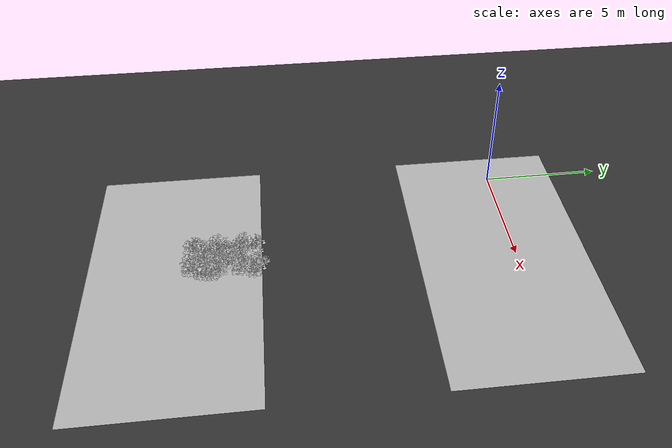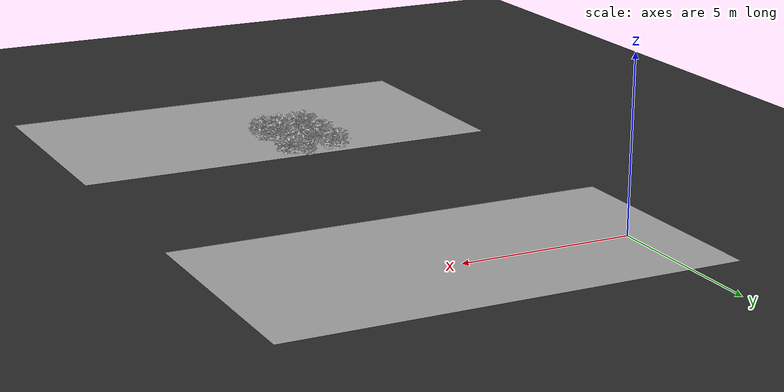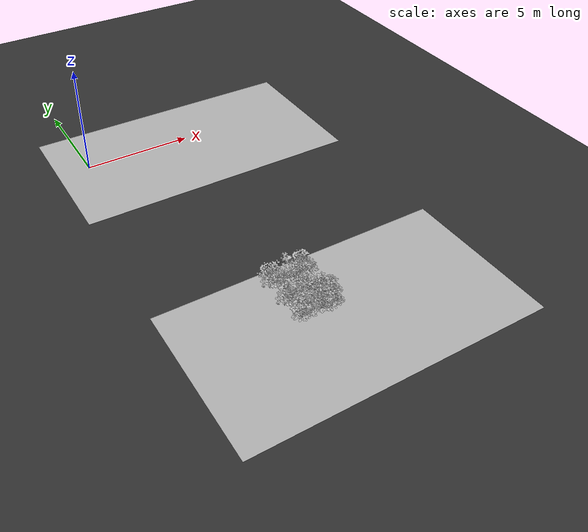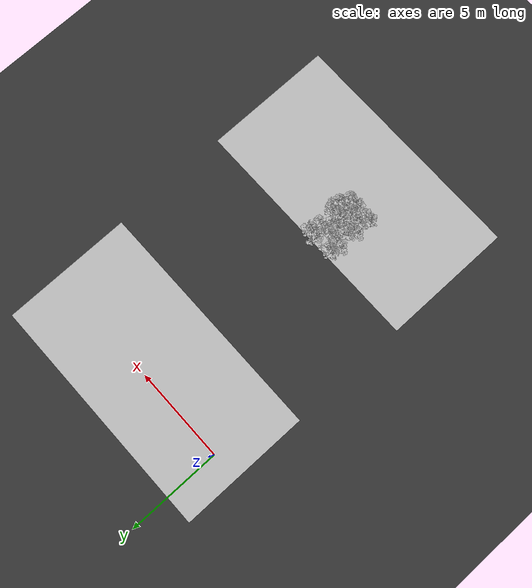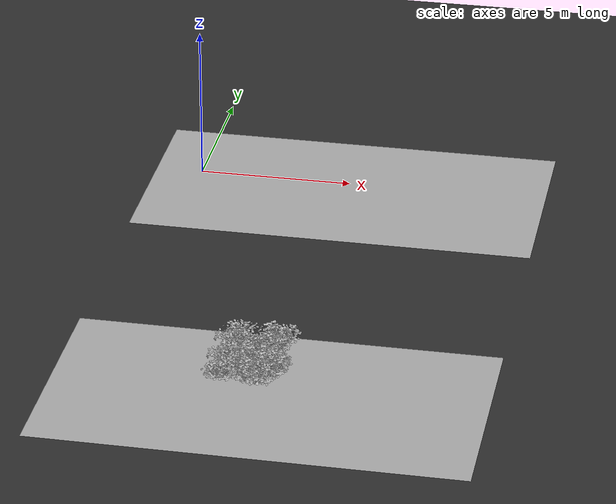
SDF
<sdf version="1.7">
 <world name="default">
  <model name="ground_plane">
   <static>1</static>
   <link name="link">
    <collision name="collision">
     <geometry><plane><normal>0 0 1</normal><size>100 100</size></plane></geometry>
     <surface>
      <contact><collide_bitmask>65535</collide_bitmask></contact>
      <friction><ode><mu>100</mu><mu2>50</mu2></ode></friction>
     </surface>
    </collision>
    <visual name="visual">
     <cast_shadows>0</cast_shadows>
     <geometry><plane><normal>0 0 1</normal><size>100 100</size></plane></geometry>
     <material>
      <ambient>0.2 0.2 0.2 1.0</ambient>
      <diffuse>0.2 0.2 0.2 1.0</diffuse>
      <specular>0.2 0.2 0.2 1.0</specular>
      <emissive>0.2 0.2 0.2 1.0</emissive>
     </material>
    </visual>
   </link>
  </model>
  <model name="ground">
   <pose>5 -0.5 0.01  3.141592654 0 0</pose>
   <static>true</static>
   <link name="body">
    <visual name="visual">
     <cast_shadows>0</cast_shadows>
     <geometry>
      <mesh><uri>file:///home/ifcosta/catkin_ws/src/cnn_line/worlds/models/ground.obj</uri></mesh>
     </geometry>
    </visual>
   </link>
  </model>
  <model name="ground_2">
   <pose>5 -13.8 0.01  3.141592654 0 0</pose>
   <static>true</static>
   <link name="body">
    <visual name="visual">
     <cast_shadows>0</cast_shadows>
     <geometry>
      <mesh><uri>file:///home/ifcosta/catkin_ws/src/cnn_line/worlds/models/ground.obj</uri></mesh>
     </geometry>
    </visual>
   </link>
  </model>
  <model name="plt_40011">
   <pose>3.26 -13.2 0.0165 0.0 0.0 -0.62735</pose>
   <static>true</static>
   <link name="body">
    <visual name="visual">
     <geometry>
      <mesh><uri>file:///home/ifcosta/catkin_ws/src/cnn_line/worlds/models/plant37.obj</uri></mesh>
     </geometry>
    </visual>
   </link>
  </model>
  <model name="plt_40012">
   <pose>3.58 -13.2 0.012 0.0 0.0 -0.29448</pose>
   <static>true</static>
   <link name="body">
    <visual name="visual">
     <geometry>
      <mesh><uri>file:///home/ifcosta/catkin_ws/src/cnn_line/worlds/models/plant37.obj</uri></mesh>
     </geometry>
    </visual>
   </link>
  </model>
  <model name="plt_40014">
   <pose>4.19 -13.2 0.0128 0.0 0.0 -1.1602</pose>
   <static>true</static>
   <link name="body">
    <visual name="visual">
     <geometry>
      <mesh><uri>file:///home/ifcosta/catkin_ws/src/cnn_line/worlds/models/plant37.obj</uri></mesh>
     </geometry>
    </visual>
   </link>
  </model>
  <model name="plt_30015">
   <pose>4.51 -10.3 0.0145 0.0 0.0 0.97449</pose>
   <static>true</static>
   <link name="body">
    <visual name="visual">
     <geometry>
      <mesh><uri>file:///home/ifcosta/catkin_ws/src/cnn_line/worlds/models/plant31.obj</uri></mesh>
     </geometry>
    </visual>
   </link>
  </model>
  <model name="plt_40015">
   <pose>4.51 -13.3 0.0145 0.0 0.0 0.50565</pose>
   <static>true</static>
   <link name="body">
    <visual name="visual">
     <geometry>
      <mesh><uri>file:///home/ifcosta/catkin_ws/src/cnn_line/worlds/models/plant37.obj</uri></mesh>
     </geometry>
    </visual>
   </link>
  </model>
  <model name="plt_40016">
   <pose>4.81 -13.2 0.0153 0.0 0.0 -1.4041</pose>
   <static>true</static>
   <link name="body">
    <visual name="visual">
     <geometry>
      <mesh><uri>file:///home/ifcosta/catkin_ws/src/cnn_line/worlds/models/plant37.obj</uri></mesh>
     </geometry>
    </visual>
   </link>
  </model>
  <model name="plt_40046">
   <pose>3.63 -12.7 0.0131 0.0 0.0 1.1864</pose>
   <static>true</static>
   <link name="body">
    <visual name="visual">
     <geometry>
      <mesh><uri>file:///home/ifcosta/catkin_ws/src/cnn_line/worlds/models/plant37.obj</uri></mesh>
     </geometry>
    </visual>
   </link>
  </model>
  <model name="plt_40047">
   <pose>3.85 -12.8 0.0146 0.0 0.0 -0.0034752</pose>
   <static>true</static>
   <link name="body">
    <visual name="visual">
     <geometry>
      <mesh><uri>file:///home/ifcosta/catkin_ws/src/cnn_line/worlds/models/plant37.obj</uri></mesh>
     </geometry>
    </visual>
   </link>
  </model>
  <model name="plt_40048">
   <pose>4.19 -12.8 0.014 0.0 0.0 -0.86264</pose>
   <static>true</static>
   <link name="body">
    <visual name="visual">
     <geometry>
      <mesh><uri>file:///home/ifcosta/catkin_ws/src/cnn_line/worlds/models/plant37.obj</uri></mesh>
     </geometry>
    </visual>
   </link>
  </model>
  <model name="plt_40049">
   <pose>4.54 -12.7 0.0166 0.0 0.0 1.8852</pose>
   <static>true</static>
   <link name="body">
    <visual name="visual">
     <geometry>
      <mesh><uri>file:///home/ifcosta/catkin_ws/src/cnn_line/worlds/models/plant37.obj</uri></mesh>
     </geometry>
    </visual>
   </link>
  </model>
  <model name="plt_40050">
   <pose>4.78 -12.8 0.0175 0.0 0.0 0.13371</pose>
   <static>true</static>
   <link name="body">
    <visual name="visual">
     <geometry>
      <mesh><uri>file:///home/ifcosta/catkin_ws/src/cnn_line/worlds/models/plant37.obj</uri></mesh>
     </geometry>
    </visual>
   </link>
  </model>
  <model name="plt_40051">
   <pose>5.07 -12.7 0.0158 0.0 0.0 -1.4834</pose>
   <static>true</static>
   <link name="body">
    <visual name="visual">
     <geometry>
      <mesh><uri>file:///home/ifcosta/catkin_ws/src/cnn_line/worlds/models/plant37.obj</uri></mesh>
     </geometry>
    </visual>
   </link>
  </model>
  <model name="plt_40079">
   <pose>3.32 -12.3 0.0155 0.0 0.0 0.55121</pose>
   <static>true</static>
   <link name="body">
    <visual name="visual">
     <geometry>
      <mesh><uri>file:///home/ifcosta/catkin_ws/src/cnn_line/worlds/models/plant37.obj</uri></mesh>
     </geometry>
    </visual>
   </link>
  </model>
  <model name="plt_40080">
   <pose>3.59 -12.2 0.0162 0.0 0.0 1.1995</pose>
   <static>true</static>
   <link name="body">
    <visual name="visual">
     <geometry>
      <mesh><uri>file:///home/ifcosta/catkin_ws/src/cnn_line/worlds/models/plant37.obj</uri></mesh>
     </geometry>
    </visual>
   </link>
  </model>
  <model name="plt_40081">
   <pose>3.9 -12.2 0.0142 0.0 0.0 0.73551</pose>
   <static>true</static>
   <link name="body">
    <visual name="visual">
     <geometry>
      <mesh><uri>file:///home/ifcosta/catkin_ws/src/cnn_line/worlds/models/plant37.obj</uri></mesh>
     </geometry>
    </visual>
   </link>
  </model>
  <model name="plt_40082">
   <pose>4.21 -12.2 0.0144 0.0 0.0 2.1574</pose>
   <static>true</static>
   <link name="body">
    <visual name="visual">
     <geometry>
      <mesh><uri>file:///home/ifcosta/catkin_ws/src/cnn_line/worlds/models/plant37.obj</uri></mesh>
     </geometry>
    </visual>
   </link>
  </model>
  <model name="plt_40083">
   <pose>4.52 -12.3 0.0153 0.0 0.0 -0.96212</pose>
   <static>true</static>
   <link name="body">
    <visual name="visual">
     <geometry>
      <mesh><uri>file:///home/ifcosta/catkin_ws/src/cnn_line/worlds/models/plant37.obj</uri></mesh>
     </geometry>
    </visual>
   </link>
  </model>
  <model name="plt_40084">
   <pose>4.83 -12.2 0.0156 0.0 0.0 -1.383</pose>
   <static>true</static>
   <link name="body">
    <visual name="visual">
     <geometry>
      <mesh><uri>file:///home/ifcosta/catkin_ws/src/cnn_line/worlds/models/plant37.obj</uri></mesh>
     </geometry>
    </visual>
   </link>
  </model>
  <model name="plt_40085">
   <pose>5.04 -12.3 0.013 0.0 0.0 0.22626</pose>
   <static>true</static>
   <link name="body">
    <visual name="visual">
     <geometry>
      <mesh><uri>file:///home/ifcosta/catkin_ws/src/cnn_line/worlds/models/plant37.obj</uri></mesh>
     </geometry>
    </visual>
   </link>
  </model>
  <model name="plt_40114">
   <pose>3.57 -11.8 0.0151 0.0 0.0 1.1737</pose>
   <static>true</static>
   <link name="body">
    <visual name="visual">
     <geometry>
      <mesh><uri>file:///home/ifcosta/catkin_ws/src/cnn_line/worlds/models/plant37.obj</uri></mesh>
     </geometry>
    </visual>
   </link>
  </model>
  <model name="plt_40116">
   <pose>4.14 -11.8 0.0131 0.0 0.0 -0.16801</pose>
   <static>true</static>
   <link name="body">
    <visual name="visual">
     <geometry>
      <mesh><uri>file:///home/ifcosta/catkin_ws/src/cnn_line/worlds/models/plant37.obj</uri></mesh>
     </geometry>
    </visual>
   </link>
  </model>
  <model name="plt_40117">
   <pose>4.47 -11.8 0.0148 0.0 0.0 1.2323</pose>
   <static>true</static>
   <link name="body">
    <visual name="visual">
     <geometry>
      <mesh><uri>file:///home/ifcosta/catkin_ws/src/cnn_line/worlds/models/plant37.obj</uri></mesh>
     </geometry>
    </visual>
   </link>
  </model>
  <model name="plt_40147">
   <pose>3.32 -11.2 0.0153 0.0 0.0 0.6336</pose>
   <static>true</static>
   <link name="body">
    <visual name="visual">
     <geometry>
      <mesh><uri>file:///home/ifcosta/catkin_ws/src/cnn_line/worlds/models/plant37.obj</uri></mesh>
     </geometry>
    </visual>
   </link>
  </model>
  <model name="plt_40148">
   <pose>3.61 -11.3 0.0126 0.0 0.0 -0.29881</pose>
   <static>true</static>
   <link name="body">
    <visual name="visual">
     <geometry>
      <mesh><uri>file:///home/ifcosta/catkin_ws/src/cnn_line/worlds/models/plant37.obj</uri></mesh>
     </geometry>
    </visual>
   </link>
  </model>
  <model name="plt_40149">
   <pose>3.89 -11.3 0.0139 0.0 0.0 -0.31769</pose>
   <static>true</static>
   <link name="body">
    <visual name="visual">
     <geometry>
      <mesh><uri>file:///home/ifcosta/catkin_ws/src/cnn_line/worlds/models/plant37.obj</uri></mesh>
     </geometry>
    </visual>
   </link>
  </model>
  <model name="plt_40150">
   <pose>4.19 -11.3 0.0145 0.0 0.0 0.1466</pose>
   <static>true</static>
   <link name="body">
    <visual name="visual">
     <geometry>
      <mesh><uri>file:///home/ifcosta/catkin_ws/src/cnn_line/worlds/models/plant37.obj</uri></mesh>
     </geometry>
    </visual>
   </link>
  </model>
  <model name="plt_40151">
   <pose>4.53 -11.2 0.0137 0.0 0.0 -0.88086</pose>
   <static>true</static>
   <link name="body">
    <visual name="visual">
     <geometry>
      <mesh><uri>file:///home/ifcosta/catkin_ws/src/cnn_line/worlds/models/plant37.obj</uri></mesh>
     </geometry>
    </visual>
   </link>
  </model>
  <model name="plt_40152">
   <pose>4.87 -11.3 0.0126 0.0 0.0 0.26802</pose>
   <static>true</static>
   <link name="body">
    <visual name="visual">
     <geometry>
      <mesh><uri>file:///home/ifcosta/catkin_ws/src/cnn_line/worlds/models/plant37.obj</uri></mesh>
     </geometry>
    </visual>
   </link>
  </model>
  <model name="plt_40181">
   <pose>3.32 -10.7 0.0137 0.0 0.0 -1.0678</pose>
   <static>true</static>
   <link name="body">
    <visual name="visual">
     <geometry>
      <mesh><uri>file:///home/ifcosta/catkin_ws/src/cnn_line/worlds/models/plant37.obj</uri></mesh>
     </geometry>
    </visual>
   </link>
  </model>
  <model name="plt_40182">
   <pose>3.64 -10.7 0.018 0.0 0.0 -1.5545</pose>
   <static>true</static>
   <link name="body">
    <visual name="visual">
     <geometry>
      <mesh><uri>file:///home/ifcosta/catkin_ws/src/cnn_line/worlds/models/plant37.obj</uri></mesh>
     </geometry>
    </visual>
   </link>
  </model>
  <model name="plt_40185">
   <pose>4.47 -10.7 0.0139 0.0 0.0 2.4066</pose>
   <static>true</static>
   <link name="body">
    <visual name="visual">
     <geometry>
      <mesh><uri>file:///home/ifcosta/catkin_ws/src/cnn_line/worlds/models/plant37.obj</uri></mesh>
     </geometry>
    </visual>
   </link>
  </model>
  <model name="plt_40186">
   <pose>4.81 -10.7 0.0149 0.0 0.0 -1.1275</pose>
   <static>true</static>
   <link name="body">
    <visual name="visual">
     <geometry>
      <mesh><uri>file:///home/ifcosta/catkin_ws/src/cnn_line/worlds/models/plant37.obj</uri></mesh>
     </geometry>
    </visual>
   </link>
  </model>
  <model name="plt_40187">
   <pose>5.07 -10.7 0.0161 0.0 0.0 1.6</pose>
   <static>true</static>
   <link name="body">
    <visual name="visual">
     <geometry>
      <mesh><uri>file:///home/ifcosta/catkin_ws/src/cnn_line/worlds/models/plant37.obj</uri></mesh>
     </geometry>
    </visual>
   </link>
  </model>
 </world>
</sdf>
